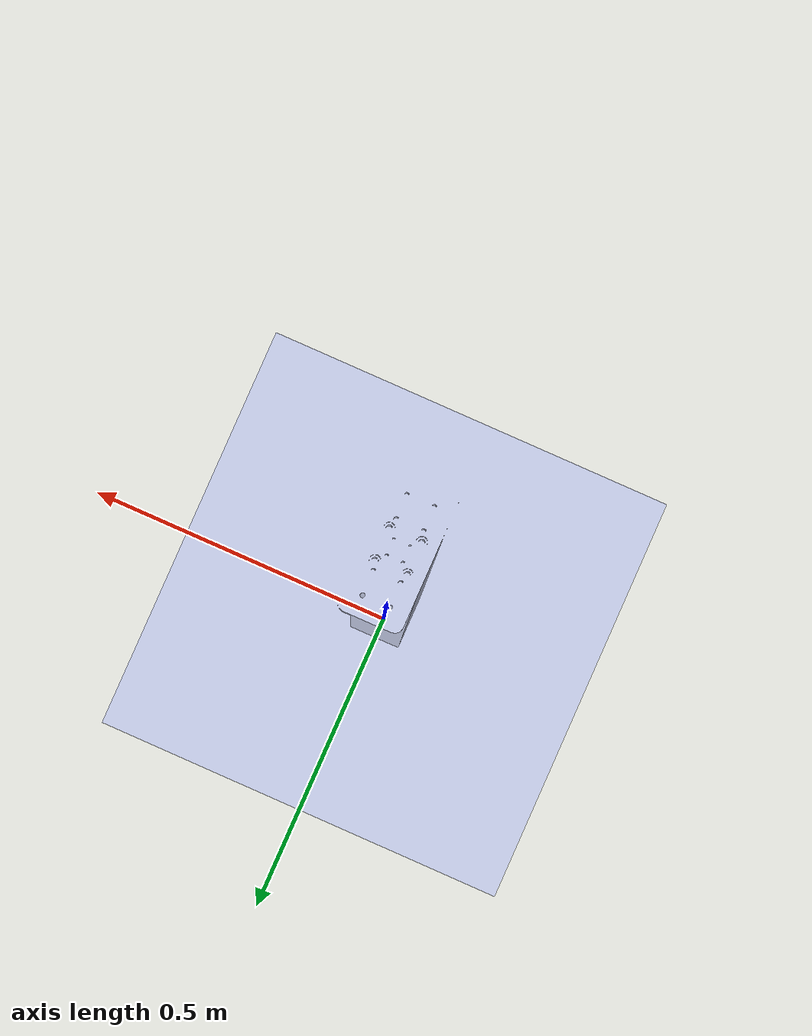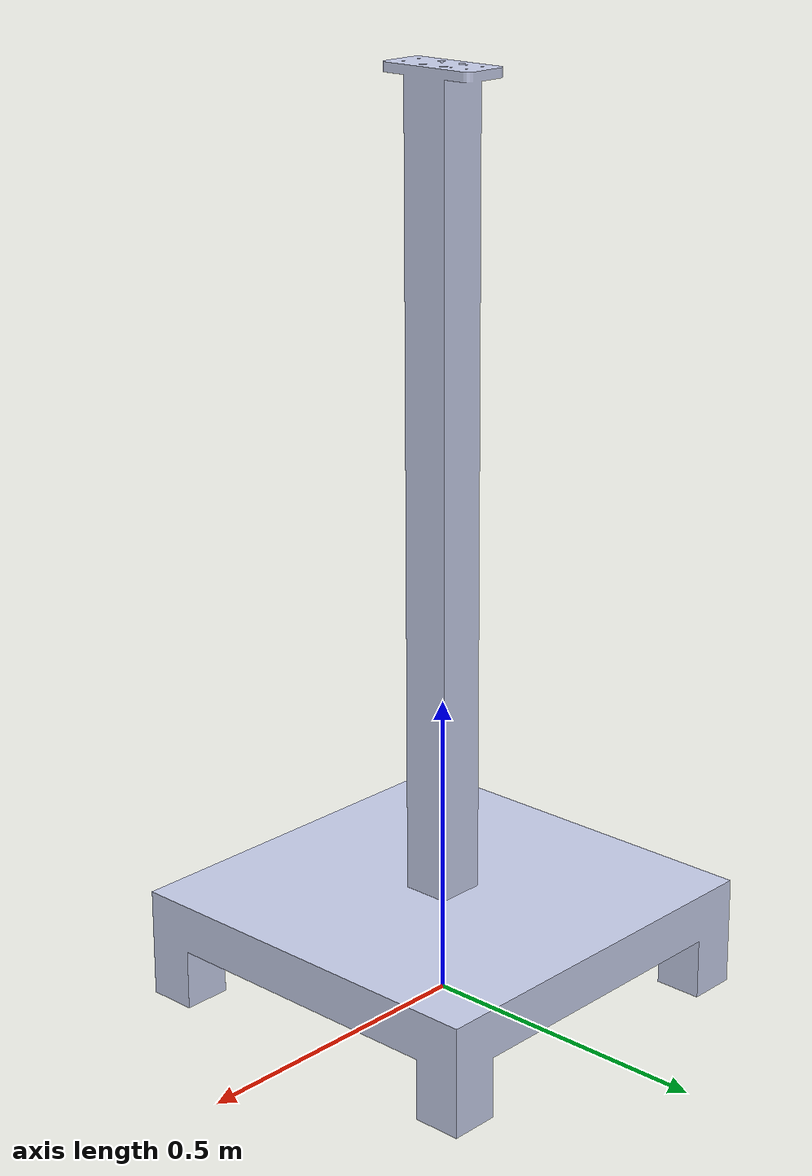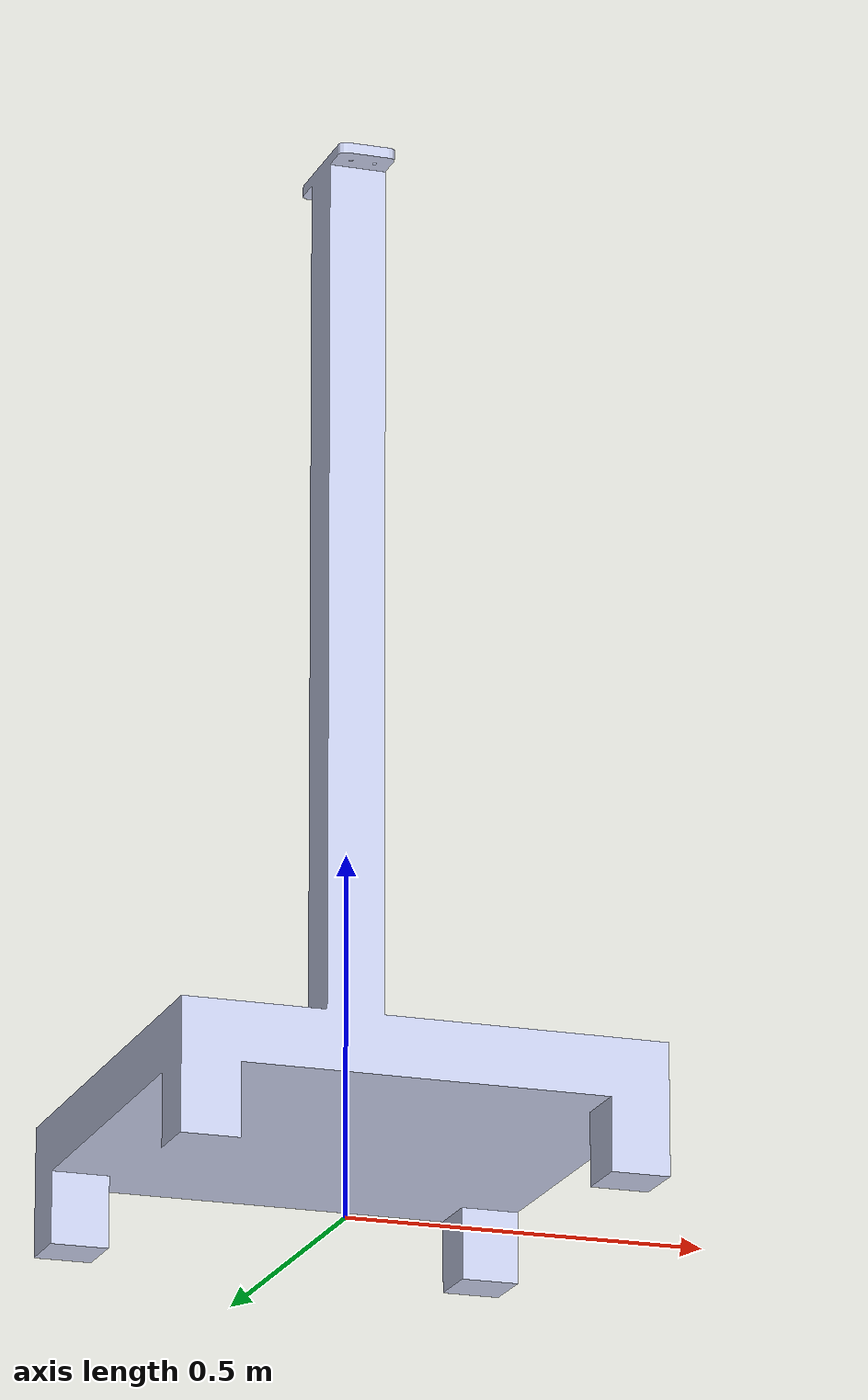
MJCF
<mujoco model="511ArmURDF_0727">
  <compiler angle="radian" meshdir="../meshes/"/>

  <visual>
    <scale jointlength="0.15" jointwidth="0.05" framelength="0.4" framewidth="0.05"/>
  </visual>

  <asset>
    <mesh name="base_link" content_type="model/stl" file="base_link.STL"/>
    <mesh name="Link0^Left" content_type="model/stl" file="Link0^Left.STL"/>
    <mesh name="Link1^Left" content_type="model/stl" file="Link1^Left.STL"/>
    <mesh name="Link2^Left" content_type="model/stl" file="Link2^Left.STL"/>
    <mesh name="Link3^Left" content_type="model/stl" file="Link3^Left.STL"/>
    <mesh name="Link3_2^Left" content_type="model/stl" file="Link3_2^Left.STL"/>
    <mesh name="Link4^Left" content_type="model/stl" file="Link4^Left.STL"/>
    <mesh name="Link5_1_1^Left" content_type="model/stl" file="Link5_1_1^Left.STL"/>
    <mesh name="Link5_1_2^Left" content_type="model/stl" file="Link5_1_2^Left.STL"/>
    <mesh name="Link5_1_3^Left" content_type="model/stl" file="Link5_1_3^Left.STL"/>
    <mesh name="Link6^Left" content_type="model/stl" file="Link6^Left.STL"/>
    <mesh name="Link7^Left" content_type="model/stl" file="Link7^Left.STL"/>
    <mesh name="Link5_2_1^Left" content_type="model/stl" file="Link5_2_1^Left.STL"/>
    <mesh name="Link5_2_2^Left" content_type="model/stl" file="Link5_2_2^Left.STL"/>
    <mesh name="Link5_2_3^Left" content_type="model/stl" file="Link5_2_3^Left.STL"/>
    <mesh name="Link0^Right" content_type="model/stl" file="Link0^Right.STL"/>
    <mesh name="Link1^Right" content_type="model/stl" file="Link1^Right.STL"/>
    <mesh name="Link2^Right" content_type="model/stl" file="Link2^Right.STL"/>
    <mesh name="Link3^Right" content_type="model/stl" file="Link3^Right.STL"/>
    <mesh name="Link3_2^Right" content_type="model/stl" file="Link3_2^Right.STL"/>
    <mesh name="Link4^Right" content_type="model/stl" file="Link4^Right.STL"/>
    <mesh name="Link5_1_1^Right" content_type="model/stl" file="Link5_1_1^Right.STL"/>
    <mesh name="Link5_1_2^Right" content_type="model/stl" file="Link5_1_2^Right.STL"/>
    <mesh name="Link5_1_3^Right" content_type="model/stl" file="Link5_1_3^Right.STL"/>
    <mesh name="Link6^Right" content_type="model/stl" file="Link6^Right.STL"/>
    <mesh name="Link7^Right" content_type="model/stl" file="Link7^Right.STL"/>
    <mesh name="Link5_2_1^Right" content_type="model/stl" file="Link5_2_1^Right.STL"/>
    <mesh name="Link5_2_2^Right" content_type="model/stl" file="Link5_2_2^Right.STL"/>
    <mesh name="Link5_2_3^Right" content_type="model/stl" file="Link5_2_3^Right.STL"/>
  </asset>

  <!-- 省略: 左右臂所有子结构（此处应使用你原始文件对应内容完整拷贝） -->

  <worldbody>
    <body name="base_link" pos="0 0 0">
      <geom type="mesh" contype="0" conaffinity="0" group="1" density="0"
            rgba="0.79216 0.81961 0.93333 1" mesh="base_link"/>
      <body name="Link1^Left" pos="0 0.1065 1.575" quat="0.499998 0.5 0.5 -0.500002">
        <!-- 左臂完整结构放置此处 -->
      </body>
      <body name="Link1^Right" pos="0 -0.1065 1.575" quat="0.499998 0.5 0.5 -0.500002">
        <!-- 右臂完整结构放置此处 -->
      </body>
    </body>
  </worldbody>

  <actuator>
    <!-- 保留你原有 actuator -->
  </actuator>

  <contact>
    <exclude body1="Link3^Left" body2="Link4^Left"/>
    <exclude body1="Link3^Right" body2="Link4^Right"/>
  </contact>
</mujoco>
